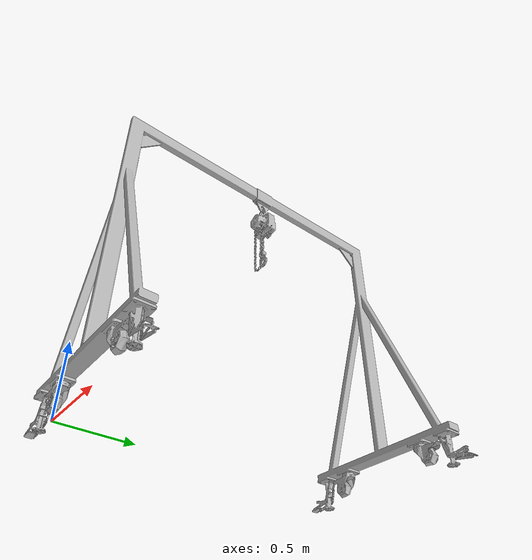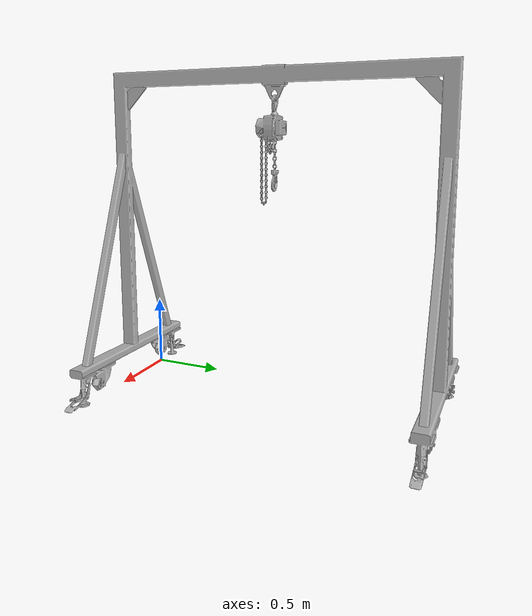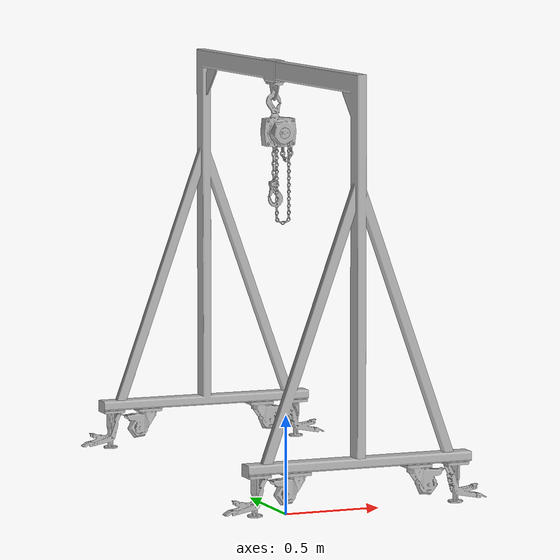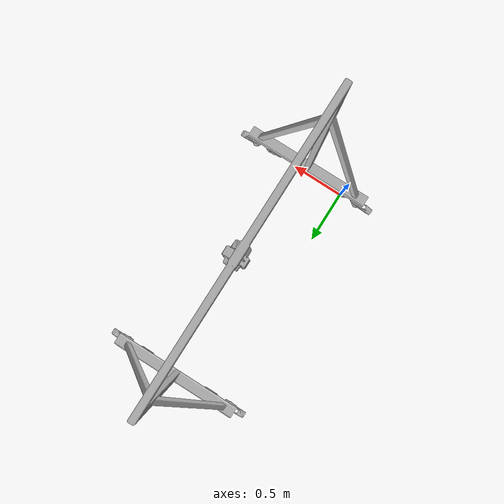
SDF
<?xml version="1.0" ?>
<sdf version="1.6">
  <model name="maual_crane">
    <static>true</static>
    <pose frame=''>0. 0. .5 1.57 0. 0.</pose>
    <link name="link">
      <collision name="collision">
        <geometry>
          <mesh>
            <uri>model://manual_crane/meshes/manual_crane.stl</uri>
            <scale>0.001 0.001 0.001</scale>
          </mesh>
        </geometry>
      </collision>
      <visual name="visual">
        <geometry>
          <mesh>
            <uri>model://manual_crane/meshes/manual_crane.stl</uri>
            <scale>0.001 0.001 0.001</scale>
          </mesh>
        </geometry>
            <material>
          <script>
            <name>Gazebo/BuildingFrame</name>
            <uri>file://media/materials/scripts/gazebo.material</uri>
          </script>
        </material>
      </visual>
    </link>
  </model>
</sdf>
